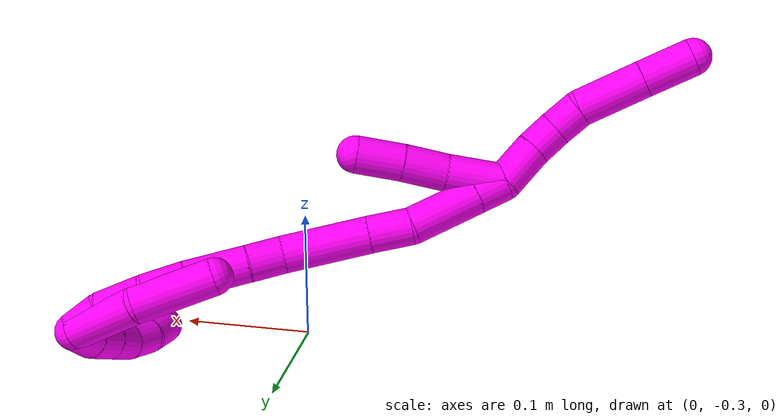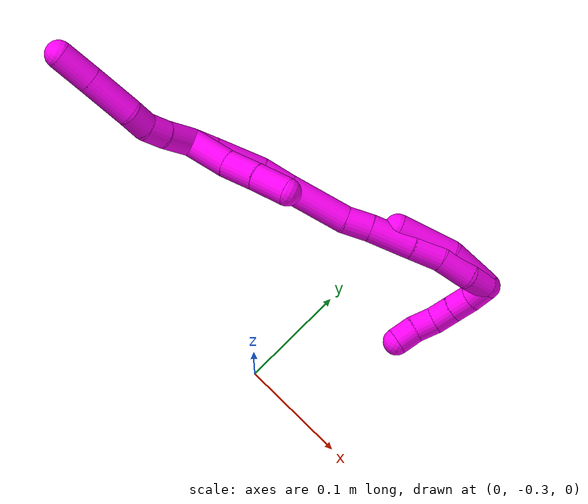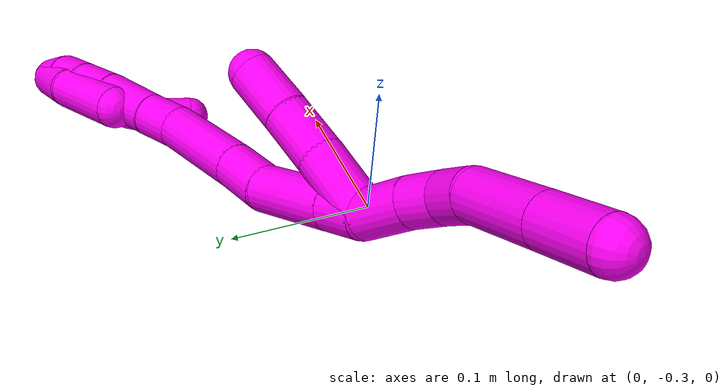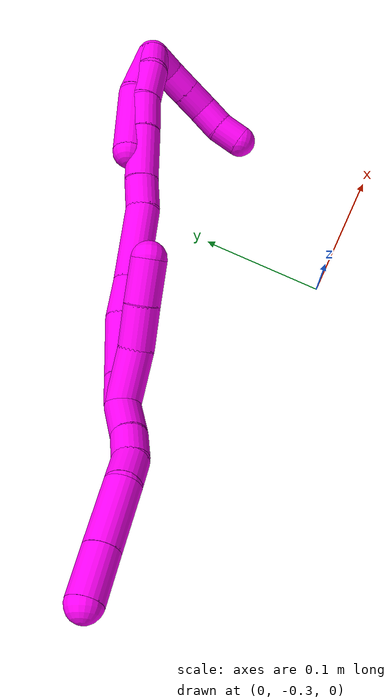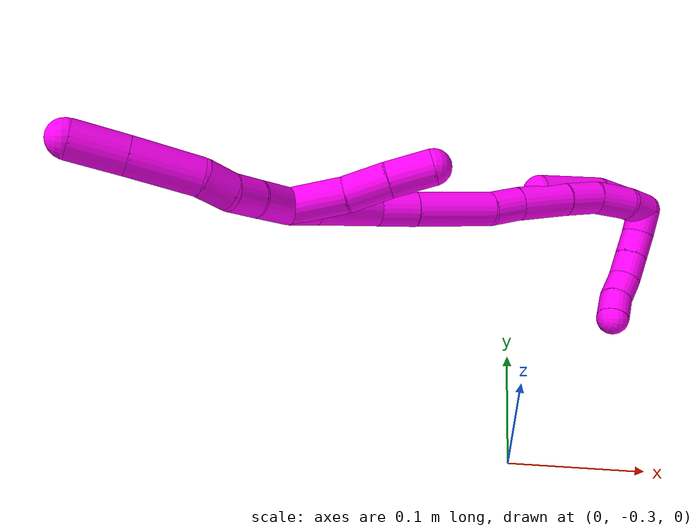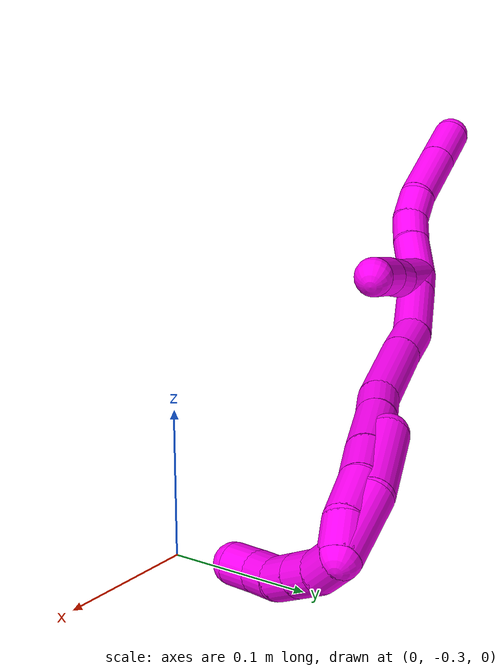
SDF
<sdf version="1.7">
 <world name="default">
  <model name="10">
   <static>0</static>
   <link name="10">
    <collision name="collision-cylinder-e_1_2_8">
     <pose>-0.000705 -0.006794 0.013079 0.479096 -0.047826 -0.011683</pose>
     <geometry><cylinder><radius>0.0125</radius><length>0.029511</length></cylinder></geometry>
     <surface>
      <friction><ode><mu>1.16</mu><mu2>1.16</mu2><slip1>0</slip1><slip2>0</slip2></ode></friction>
      <contact><ode><kp>1e+06</kp><kd>1</kd><max_vel>0</max_vel><min_depth>0.001</min_depth></ode></contact>
     </surface>
    </collision>
    <visual name="visual-cylinder-e_1_2_8">
     <pose>-0.000705 -0.006794 0.013079 0.479096 -0.047826 -0.011683</pose>
     <geometry><cylinder><radius>0.0125</radius><length>0.029511</length></cylinder></geometry>
     <material><ambient>1 0 0.964706 1</ambient></material>
    </visual>
    <collision name="collision-cylinder-e_2_8_9">
     <pose>-0.001274 -0.017353 0.035727 0.374846 0.01328 0.002518</pose>
     <geometry><cylinder><radius>0.0125</radius><length>0.020568</length></cylinder></geometry>
     <surface>
      <friction><ode><mu>1.16</mu><mu2>1.16</mu2><slip1>0</slip1><slip2>0</slip2></ode></friction>
      <contact><ode><kp>1e+06</kp><kd>1</kd><max_vel>0</max_vel><min_depth>0.001</min_depth></ode></contact>
     </surface>
    </collision>
    <visual name="visual-cylinder-e_2_8_9">
     <pose>-0.001274 -0.017353 0.035727 0.374846 0.01328 0.002518</pose>
     <geometry><cylinder><radius>0.0125</radius><length>0.020568</length></cylinder></geometry>
     <material><ambient>1 0 0.964706 1</ambient></material>
    </visual>
    <collision name="collision-cylinder-e_3_9_10">
     <pose>0.00191 -0.024188 0.054867 0.310418 0.294405 0.046392</pose>
     <geometry><cylinder><radius>0.0125</radius><length>0.021006</length></cylinder></geometry>
     <surface>
      <friction><ode><mu>1.16</mu><mu2>1.16</mu2><slip1>0</slip1><slip2>0</slip2></ode></friction>
      <contact><ode><kp>1e+06</kp><kd>1</kd><max_vel>0</max_vel><min_depth>0.001</min_depth></ode></contact>
     </surface>
    </collision>
    <visual name="visual-cylinder-e_3_9_10">
     <pose>0.00191 -0.024188 0.054867 0.310418 0.294405 0.046392</pose>
     <geometry><cylinder><radius>0.0125</radius><length>0.021006</length></cylinder></geometry>
     <material><ambient>1 0 0.964706 1</ambient></material>
    </visual>
    <collision name="collision-cylinder-e_4_10_11">
     <pose>0.010007 -0.028034 0.08633 0.035435 0.226556 0.004032</pose>
     <geometry><cylinder><radius>0.0125</radius><length>0.044961</length></cylinder></geometry>
     <surface>
      <friction><ode><mu>1.16</mu><mu2>1.16</mu2><slip1>0</slip1><slip2>0</slip2></ode></friction>
      <contact><ode><kp>1e+06</kp><kd>1</kd><max_vel>0</max_vel><min_depth>0.001</min_depth></ode></contact>
     </surface>
    </collision>
    <visual name="visual-cylinder-e_4_10_11">
     <pose>0.010007 -0.028034 0.08633 0.035435 0.226556 0.004032</pose>
     <geometry><cylinder><radius>0.0125</radius><length>0.044961</length></cylinder></geometry>
     <material><ambient>1 0 0.964706 1</ambient></material>
    </visual>
    <collision name="collision-cylinder-e_5_11_6">
     <pose>0.018705 -0.029248 0.124797 0.026382 0.216557 0.002868</pose>
     <geometry><cylinder><radius>0.0125</radius><length>0.033955</length></cylinder></geometry>
     <surface>
      <friction><ode><mu>1.16</mu><mu2>1.16</mu2><slip1>0</slip1><slip2>0</slip2></ode></friction>
      <contact><ode><kp>1e+06</kp><kd>1</kd><max_vel>0</max_vel><min_depth>0.001</min_depth></ode></contact>
     </surface>
    </collision>
    <visual name="visual-cylinder-e_5_11_6">
     <pose>0.018705 -0.029248 0.124797 0.026382 0.216557 0.002868</pose>
     <geometry><cylinder><radius>0.0125</radius><length>0.033955</length></cylinder></geometry>
     <material><ambient>1 0 0.964706 1</ambient></material>
    </visual>
    <collision name="collision-cylinder-e_1_2_12">
     <pose>0.001259 -0.009855 -0.016731 2.6093 0.064772 0.23657</pose>
     <geometry><cylinder><radius>0.0125</radius><length>0.038917</length></cylinder></geometry>
     <surface>
      <friction><ode><mu>1.16</mu><mu2>1.16</mu2><slip1>0</slip1><slip2>0</slip2></ode></friction>
      <contact><ode><kp>1e+06</kp><kd>1</kd><max_vel>0</max_vel><min_depth>0.001</min_depth></ode></contact>
     </surface>
    </collision>
    <visual name="visual-cylinder-e_1_2_12">
     <pose>0.001259 -0.009855 -0.016731 2.6093 0.064772 0.23657</pose>
     <geometry><cylinder><radius>0.0125</radius><length>0.038917</length></cylinder></geometry>
     <material><ambient>1 0 0.964706 1</ambient></material>
    </visual>
    <collision name="collision-cylinder-e_2_12_13">
     <pose>0.005295 -0.027635 -0.045798 2.57052 0.187145 0.618835</pose>
     <geometry><cylinder><radius>0.0125</radius><length>0.029845</length></cylinder></geometry>
     <surface>
      <friction><ode><mu>1.16</mu><mu2>1.16</mu2><slip1>0</slip1><slip2>0</slip2></ode></friction>
      <contact><ode><kp>1e+06</kp><kd>1</kd><max_vel>0</max_vel><min_depth>0.001</min_depth></ode></contact>
     </surface>
    </collision>
    <visual name="visual-cylinder-e_2_12_13">
     <pose>0.005295 -0.027635 -0.045798 2.57052 0.187145 0.618835</pose>
     <geometry><cylinder><radius>0.0125</radius><length>0.029845</length></cylinder></geometry>
     <material><ambient>1 0 0.964706 1</ambient></material>
    </visual>
    <collision name="collision-cylinder-e_3_13_5">
     <pose>0.010409 -0.043279 -0.071509 2.61819 0.15021 0.547748</pose>
     <geometry><cylinder><radius>0.0125</radius><length>0.031238</length></cylinder></geometry>
     <surface>
      <friction><ode><mu>1.16</mu><mu2>1.16</mu2><slip1>0</slip1><slip2>0</slip2></ode></friction>
      <contact><ode><kp>1e+06</kp><kd>1</kd><max_vel>0</max_vel><min_depth>0.001</min_depth></ode></contact>
     </surface>
    </collision>
    <visual name="visual-cylinder-e_3_13_5">
     <pose>0.010409 -0.043279 -0.071509 2.61819 0.15021 0.547748</pose>
     <geometry><cylinder><radius>0.0125</radius><length>0.031238</length></cylinder></geometry>
     <material><ambient>1 0 0.964706 1</ambient></material>
    </visual>
    <collision name="collision-cylinder-e_1_2_14">
     <pose>0.0007 0.00082 -0.010242 -3.06169 0.068044 -1.4107</pose>
     <geometry><cylinder><radius>0.0125</radius><length>0.020597</length></cylinder></geometry>
     <surface>
      <friction><ode><mu>1.16</mu><mu2>1.16</mu2><slip1>0</slip1><slip2>0</slip2></ode></friction>
      <contact><ode><kp>1e+06</kp><kd>1</kd><max_vel>0</max_vel><min_depth>0.001</min_depth></ode></contact>
     </surface>
    </collision>
    <visual name="visual-cylinder-e_1_2_14">
     <pose>0.0007 0.00082 -0.010242 -3.06169 0.068044 -1.4107</pose>
     <geometry><cylinder><radius>0.0125</radius><length>0.020597</length></cylinder></geometry>
     <material><ambient>1 0 0.964706 1</ambient></material>
    </visual>
    <collision name="collision-cylinder-e_2_14_15">
     <pose>0.002789 0.003537 -0.04388 -3.06069 0.059079 -1.26119</pose>
     <geometry><cylinder><radius>0.0125</radius><length>0.047028</length></cylinder></geometry>
     <surface>
      <friction><ode><mu>1.16</mu><mu2>1.16</mu2><slip1>0</slip1><slip2>0</slip2></ode></friction>
      <contact><ode><kp>1e+06</kp><kd>1</kd><max_vel>0</max_vel><min_depth>0.001</min_depth></ode></contact>
     </surface>
    </collision>
    <visual name="visual-cylinder-e_2_14_15">
     <pose>0.002789 0.003537 -0.04388 -3.06069 0.059079 -1.26119</pose>
     <geometry><cylinder><radius>0.0125</radius><length>0.047028</length></cylinder></geometry>
     <material><ambient>1 0 0.964706 1</ambient></material>
    </visual>
    <collision name="collision-cylinder-e_3_15_16">
     <pose>0.003742 0.003017 -0.08126 2.97042 -0.030662 -0.35368</pose>
     <geometry><cylinder><radius>0.0125</radius><length>0.028396</length></cylinder></geometry>
     <surface>
      <friction><ode><mu>1.16</mu><mu2>1.16</mu2><slip1>0</slip1><slip2>0</slip2></ode></friction>
      <contact><ode><kp>1e+06</kp><kd>1</kd><max_vel>0</max_vel><min_depth>0.001</min_depth></ode></contact>
     </surface>
    </collision>
    <visual name="visual-cylinder-e_3_15_16">
     <pose>0.003742 0.003017 -0.08126 2.97042 -0.030662 -0.35368</pose>
     <geometry><cylinder><radius>0.0125</radius><length>0.028396</length></cylinder></geometry>
     <material><ambient>1 0 0.964706 1</ambient></material>
    </visual>
    <collision name="collision-cylinder-e_4_16_17">
     <pose>0.003376 -0.003514 -0.124013 2.99957 0.002371 0.033336</pose>
     <geometry><cylinder><radius>0.0125</radius><length>0.058124</length></cylinder></geometry>
     <surface>
      <friction><ode><mu>1.16</mu><mu2>1.16</mu2><slip1>0</slip1><slip2>0</slip2></ode></friction>
      <contact><ode><kp>1e+06</kp><kd>1</kd><max_vel>0</max_vel><min_depth>0.001</min_depth></ode></contact>
     </surface>
    </collision>
    <visual name="visual-cylinder-e_4_16_17">
     <pose>0.003376 -0.003514 -0.124013 2.99957 0.002371 0.033336</pose>
     <geometry><cylinder><radius>0.0125</radius><length>0.058124</length></cylinder></geometry>
     <material><ambient>1 0 0.964706 1</ambient></material>
    </visual>
    <collision name="collision-cylinder-e_5_17_18">
     <pose>0.005656 -0.00872 -0.164331 3.04725 0.188384 2.21477</pose>
     <geometry><cylinder><radius>0.0125</radius><length>0.023618</length></cylinder></geometry>
     <surface>
      <friction><ode><mu>1.16</mu><mu2>1.16</mu2><slip1>0</slip1><slip2>0</slip2></ode></friction>
      <contact><ode><kp>1e+06</kp><kd>1</kd><max_vel>0</max_vel><min_depth>0.001</min_depth></ode></contact>
     </surface>
    </collision>
    <visual name="visual-cylinder-e_5_17_18">
     <pose>0.005656 -0.00872 -0.164331 3.04725 0.188384 2.21477</pose>
     <geometry><cylinder><radius>0.0125</radius><length>0.023618</length></cylinder></geometry>
     <material><ambient>1 0 0.964706 1</ambient></material>
    </visual>
    <collision name="collision-cylinder-e_6_18_19">
     <pose>0.009993 -0.012042 -0.19609 3.03175 0.104164 1.51761</pose>
     <geometry><cylinder><radius>0.0125</radius><length>0.040887</length></cylinder></geometry>
     <surface>
      <friction><ode><mu>1.16</mu><mu2>1.16</mu2><slip1>0</slip1><slip2>0</slip2></ode></friction>
      <contact><ode><kp>1e+06</kp><kd>1</kd><max_vel>0</max_vel><min_depth>0.001</min_depth></ode></contact>
     </surface>
    </collision>
    <visual name="visual-cylinder-e_6_18_19">
     <pose>0.009993 -0.012042 -0.19609 3.03175 0.104164 1.51761</pose>
     <geometry><cylinder><radius>0.0125</radius><length>0.040887</length></cylinder></geometry>
     <material><ambient>1 0 0.964706 1</ambient></material>
    </visual>
    <collision name="collision-cylinder-e_7_19_20">
     <pose>0.013454 -0.014911 -0.230291 3.09587 0.095039 2.24532</pose>
     <geometry><cylinder><radius>0.0125</radius><length>0.028138</length></cylinder></geometry>
     <surface>
      <friction><ode><mu>1.16</mu><mu2>1.16</mu2><slip1>0</slip1><slip2>0</slip2></ode></friction>
      <contact><ode><kp>1e+06</kp><kd>1</kd><max_vel>0</max_vel><min_depth>0.001</min_depth></ode></contact>
     </surface>
    </collision>
    <visual name="visual-cylinder-e_7_19_20">
     <pose>0.013454 -0.014911 -0.230291 3.09587 0.095039 2.24532</pose>
     <geometry><cylinder><radius>0.0125</radius><length>0.028138</length></cylinder></geometry>
     <material><ambient>1 0 0.964706 1</ambient></material>
    </visual>
    <collision name="collision-cylinder-e_8_20_21">
     <pose>0.013196 -0.015514 -0.259654 -3.13919 -0.10329 3.09514</pose>
     <geometry><cylinder><radius>0.0125</radius><length>0.03091</length></cylinder></geometry>
     <surface>
      <friction><ode><mu>1.16</mu><mu2>1.16</mu2><slip1>0</slip1><slip2>0</slip2></ode></friction>
      <contact><ode><kp>1e+06</kp><kd>1</kd><max_vel>0</max_vel><min_depth>0.001</min_depth></ode></contact>
     </surface>
    </collision>
    <visual name="visual-cylinder-e_8_20_21">
     <pose>0.013196 -0.015514 -0.259654 -3.13919 -0.10329 3.09514</pose>
     <geometry><cylinder><radius>0.0125</radius><length>0.03091</length></cylinder></geometry>
     <material><ambient>1 0 0.964706 1</ambient></material>
    </visual>
    <collision name="collision-cylinder-e_9_21_1">
     <pose>0.010582 -0.01249 -0.285722 -2.86926 -0.091563 0.645362</pose>
     <geometry><cylinder><radius>0.0125</radius><length>0.022302</length></cylinder></geometry>
     <surface>
      <friction><ode><mu>1.16</mu><mu2>1.16</mu2><slip1>0</slip1><slip2>0</slip2></ode></friction>
      <contact><ode><kp>1e+06</kp><kd>1</kd><max_vel>0</max_vel><min_depth>0.001</min_depth></ode></contact>
     </surface>
    </collision>
    <visual name="visual-cylinder-e_9_21_1">
     <pose>0.010582 -0.01249 -0.285722 -2.86926 -0.091563 0.645362</pose>
     <geometry><cylinder><radius>0.0125</radius><length>0.022302</length></cylinder></geometry>
     <material><ambient>1 0 0.964706 1</ambient></material>
    </visual>
    <collision name="collision-cylinder-e_1_1_22">
     <pose>0.015222 -0.009715 -0.274399 0.0096 0.251572 0.001214</pose>
     <geometry><cylinder><radius>0.0125</radius><length>0.045468</length></cylinder></geometry>
     <surface>
      <friction><ode><mu>1.16</mu><mu2>1.16</mu2><slip1>0</slip1><slip2>0</slip2></ode></friction>
      <contact><ode><kp>1e+06</kp><kd>1</kd><max_vel>0</max_vel><min_depth>0.001</min_depth></ode></contact>
     </surface>
    </collision>
    <visual name="visual-cylinder-e_1_1_22">
     <pose>0.015222 -0.009715 -0.274399 0.0096 0.251572 0.001214</pose>
     <geometry><cylinder><radius>0.0125</radius><length>0.045468</length></cylinder></geometry>
     <material><ambient>1 0 0.964706 1</ambient></material>
    </visual>
    <collision name="collision-cylinder-e_2_22_4">
     <pose>0.02025 -0.009364 -0.225129 -0.020641 -0.023145 0.000239</pose>
     <geometry><cylinder><radius>0.0125</radius><length>0.054532</length></cylinder></geometry>
     <surface>
      <friction><ode><mu>1.16</mu><mu2>1.16</mu2><slip1>0</slip1><slip2>0</slip2></ode></friction>
      <contact><ode><kp>1e+06</kp><kd>1</kd><max_vel>0</max_vel><min_depth>0.001</min_depth></ode></contact>
     </surface>
    </collision>
    <visual name="visual-cylinder-e_2_22_4">
     <pose>0.02025 -0.009364 -0.225129 -0.020641 -0.023145 0.000239</pose>
     <geometry><cylinder><radius>0.0125</radius><length>0.054532</length></cylinder></geometry>
     <material><ambient>1 0 0.964706 1</ambient></material>
    </visual>
    <collision name="collision-cylinder-e_1_1_23">
     <pose>0.000527 -0.005757 -0.294339 -1.06447 -1.12808 0.713235</pose>
     <geometry><cylinder><radius>0.0125</radius><length>0.02</length></cylinder></geometry>
     <surface>
      <friction><ode><mu>1.16</mu><mu2>1.16</mu2><slip1>0</slip1><slip2>0</slip2></ode></friction>
      <contact><ode><kp>1e+06</kp><kd>1</kd><max_vel>0</max_vel><min_depth>0.001</min_depth></ode></contact>
     </surface>
    </collision>
    <visual name="visual-cylinder-e_1_1_23">
     <pose>0.000527 -0.005757 -0.294339 -1.06447 -1.12808 0.713235</pose>
     <geometry><cylinder><radius>0.0125</radius><length>0.02</length></cylinder></geometry>
     <material><ambient>1 0 0.964706 1</ambient></material>
    </visual>
    <collision name="collision-cylinder-e_2_23_24">
     <pose>-0.017523 -0.000154 -0.288349 -0.442961 -1.12288 0.281377</pose>
     <geometry><cylinder><radius>0.0125</radius><length>0.02</length></cylinder></geometry>
     <surface>
      <friction><ode><mu>1.16</mu><mu2>1.16</mu2><slip1>0</slip1><slip2>0</slip2></ode></friction>
      <contact><ode><kp>1e+06</kp><kd>1</kd><max_vel>0</max_vel><min_depth>0.001</min_depth></ode></contact>
     </surface>
    </collision>
    <visual name="visual-cylinder-e_2_23_24">
     <pose>-0.017523 -0.000154 -0.288349 -0.442961 -1.12288 0.281377</pose>
     <geometry><cylinder><radius>0.0125</radius><length>0.02</length></cylinder></geometry>
     <material><ambient>1 0 0.964706 1</ambient></material>
    </visual>
    <collision name="collision-cylinder-e_3_24_25">
     <pose>-0.035569 0.003516 -0.280548 -0.436504 -1.12736 0.278561</pose>
     <geometry><cylinder><radius>0.0125</radius><length>0.02</length></cylinder></geometry>
     <surface>
      <friction><ode><mu>1.16</mu><mu2>1.16</mu2><slip1>0</slip1><slip2>0</slip2></ode></friction>
      <contact><ode><kp>1e+06</kp><kd>1</kd><max_vel>0</max_vel><min_depth>0.001</min_depth></ode></contact>
     </surface>
    </collision>
    <visual name="visual-cylinder-e_3_24_25">
     <pose>-0.035569 0.003516 -0.280548 -0.436504 -1.12736 0.278561</pose>
     <geometry><cylinder><radius>0.0125</radius><length>0.02</length></cylinder></geometry>
     <material><ambient>1 0 0.964706 1</ambient></material>
    </visual>
    <collision name="collision-cylinder-e_4_25_26">
     <pose>-0.05265 0.00521 -0.270726 0.020233 -0.935469 -0.01022</pose>
     <geometry><cylinder><radius>0.0125</radius><length>0.02</length></cylinder></geometry>
     <surface>
      <friction><ode><mu>1.16</mu><mu2>1.16</mu2><slip1>0</slip1><slip2>0</slip2></ode></friction>
      <contact><ode><kp>1e+06</kp><kd>1</kd><max_vel>0</max_vel><min_depth>0.001</min_depth></ode></contact>
     </surface>
    </collision>
    <visual name="visual-cylinder-e_4_25_26">
     <pose>-0.05265 0.00521 -0.270726 0.020233 -0.935469 -0.01022</pose>
     <geometry><cylinder><radius>0.0125</radius><length>0.02</length></cylinder></geometry>
     <material><ambient>1 0 0.964706 1</ambient></material>
    </visual>
    <collision name="collision-cylinder-e_5_26_3">
     <pose>-0.069257 0.003146 -0.259999 0.385186 -1.02713 -0.219109</pose>
     <geometry><cylinder><radius>0.0125</radius><length>0.02</length></cylinder></geometry>
     <surface>
      <friction><ode><mu>1.16</mu><mu2>1.16</mu2><slip1>0</slip1><slip2>0</slip2></ode></friction>
      <contact><ode><kp>1e+06</kp><kd>1</kd><max_vel>0</max_vel><min_depth>0.001</min_depth></ode></contact>
     </surface>
    </collision>
    <visual name="visual-cylinder-e_5_26_3">
     <pose>-0.069257 0.003146 -0.259999 0.385186 -1.02713 -0.219109</pose>
     <geometry><cylinder><radius>0.0125</radius><length>0.02</length></cylinder></geometry>
     <material><ambient>1 0 0.964706 1</ambient></material>
    </visual>
    <collision name="collision-sphere-3">
     <pose>-0.077816 0.001202 -0.255206 0 -0 0</pose>
     <geometry><sphere><radius>0.0125</radius></sphere></geometry>
     <surface>
      <friction><ode><mu>1.16</mu><mu2>1.16</mu2><slip1>0</slip1><slip2>0</slip2></ode></friction>
      <contact><ode><kp>1e+06</kp><kd>1</kd><max_vel>0</max_vel><min_depth>0.001</min_depth></ode></contact>
     </surface>
    </collision>
    <visual name="visual-sphere-3">
     <pose>-0.077816 0.001202 -0.255206 0 -0 0</pose>
     <geometry><sphere><radius>0.0125</radius></sphere></geometry>
     <material><ambient>1 0 0.964706 1</ambient></material>
    </visual>
    <collision name="collision-sphere-26">
     <pose>-0.060699 0.00509 -0.264793 0 -0 0</pose>
     <geometry><sphere><radius>0.0125</radius></sphere></geometry>
     <surface>
      <friction><ode><mu>1.16</mu><mu2>1.16</mu2><slip1>0</slip1><slip2>0</slip2></ode></friction>
      <contact><ode><kp>1e+06</kp><kd>1</kd><max_vel>0</max_vel><min_depth>0.001</min_depth></ode></contact>
     </surface>
    </collision>
    <visual name="visual-sphere-26">
     <pose>-0.060699 0.00509 -0.264793 0 -0 0</pose>
     <geometry><sphere><radius>0.0125</radius></sphere></geometry>
     <material><ambient>1 0 0.964706 1</ambient></material>
    </visual>
    <collision name="collision-sphere-25">
     <pose>-0.044602 0.00533 -0.27666 0 -0 0</pose>
     <geometry><sphere><radius>0.0125</radius></sphere></geometry>
     <surface>
      <friction><ode><mu>1.16</mu><mu2>1.16</mu2><slip1>0</slip1><slip2>0</slip2></ode></friction>
      <contact><ode><kp>1e+06</kp><kd>1</kd><max_vel>0</max_vel><min_depth>0.001</min_depth></ode></contact>
     </surface>
    </collision>
    <visual name="visual-sphere-25">
     <pose>-0.044602 0.00533 -0.27666 0 -0 0</pose>
     <geometry><sphere><radius>0.0125</radius></sphere></geometry>
     <material><ambient>1 0 0.964706 1</ambient></material>
    </visual>
    <collision name="collision-sphere-24">
     <pose>-0.026536 0.001702 -0.284436 0 -0 0</pose>
     <geometry><sphere><radius>0.0125</radius></sphere></geometry>
     <surface>
      <friction><ode><mu>1.16</mu><mu2>1.16</mu2><slip1>0</slip1><slip2>0</slip2></ode></friction>
      <contact><ode><kp>1e+06</kp><kd>1</kd><max_vel>0</max_vel><min_depth>0.001</min_depth></ode></contact>
     </surface>
    </collision>
    <visual name="visual-sphere-24">
     <pose>-0.026536 0.001702 -0.284436 0 -0 0</pose>
     <geometry><sphere><radius>0.0125</radius></sphere></geometry>
     <material><ambient>1 0 0.964706 1</ambient></material>
    </visual>
    <collision name="collision-sphere-23">
     <pose>-0.008509 -0.002011 -0.292262 0 -0 0</pose>
     <geometry><sphere><radius>0.0125</radius></sphere></geometry>
     <surface>
      <friction><ode><mu>1.16</mu><mu2>1.16</mu2><slip1>0</slip1><slip2>0</slip2></ode></friction>
      <contact><ode><kp>1e+06</kp><kd>1</kd><max_vel>0</max_vel><min_depth>0.001</min_depth></ode></contact>
     </surface>
    </collision>
    <visual name="visual-sphere-23">
     <pose>-0.008509 -0.002011 -0.292262 0 -0 0</pose>
     <geometry><sphere><radius>0.0125</radius></sphere></geometry>
     <material><ambient>1 0 0.964706 1</ambient></material>
    </visual>
    <collision name="collision-sphere-4">
     <pose>0.019619 -0.008801 -0.197876 0 -0 0</pose>
     <geometry><sphere><radius>0.0125</radius></sphere></geometry>
     <surface>
      <friction><ode><mu>1.16</mu><mu2>1.16</mu2><slip1>0</slip1><slip2>0</slip2></ode></friction>
      <contact><ode><kp>1e+06</kp><kd>1</kd><max_vel>0</max_vel><min_depth>0.001</min_depth></ode></contact>
     </surface>
    </collision>
    <visual name="visual-sphere-4">
     <pose>0.019619 -0.008801 -0.197876 0 -0 0</pose>
     <geometry><sphere><radius>0.0125</radius></sphere></geometry>
     <material><ambient>1 0 0.964706 1</ambient></material>
    </visual>
    <collision name="collision-sphere-22">
     <pose>0.020881 -0.009926 -0.252382 0 -0 0</pose>
     <geometry><sphere><radius>0.0125</radius></sphere></geometry>
     <surface>
      <friction><ode><mu>1.16</mu><mu2>1.16</mu2><slip1>0</slip1><slip2>0</slip2></ode></friction>
      <contact><ode><kp>1e+06</kp><kd>1</kd><max_vel>0</max_vel><min_depth>0.001</min_depth></ode></contact>
     </surface>
    </collision>
    <visual name="visual-sphere-22">
     <pose>0.020881 -0.009926 -0.252382 0 -0 0</pose>
     <geometry><sphere><radius>0.0125</radius></sphere></geometry>
     <material><ambient>1 0 0.964706 1</ambient></material>
    </visual>
    <collision name="collision-sphere-1">
     <pose>0.009563 -0.009504 -0.296417 0 -0 0</pose>
     <geometry><sphere><radius>0.0125</radius></sphere></geometry>
     <surface>
      <friction><ode><mu>1.16</mu><mu2>1.16</mu2><slip1>0</slip1><slip2>0</slip2></ode></friction>
      <contact><ode><kp>1e+06</kp><kd>1</kd><max_vel>0</max_vel><min_depth>0.001</min_depth></ode></contact>
     </surface>
    </collision>
    <visual name="visual-sphere-1">
     <pose>0.009563 -0.009504 -0.296417 0 -0 0</pose>
     <geometry><sphere><radius>0.0125</radius></sphere></geometry>
     <material><ambient>1 0 0.964706 1</ambient></material>
    </visual>
    <collision name="collision-sphere-21">
     <pose>0.011602 -0.015477 -0.275026 0 -0 0</pose>
     <geometry><sphere><radius>0.0125</radius></sphere></geometry>
     <surface>
      <friction><ode><mu>1.16</mu><mu2>1.16</mu2><slip1>0</slip1><slip2>0</slip2></ode></friction>
      <contact><ode><kp>1e+06</kp><kd>1</kd><max_vel>0</max_vel><min_depth>0.001</min_depth></ode></contact>
     </surface>
    </collision>
    <visual name="visual-sphere-21">
     <pose>0.011602 -0.015477 -0.275026 0 -0 0</pose>
     <geometry><sphere><radius>0.0125</radius></sphere></geometry>
     <material><ambient>1 0 0.964706 1</ambient></material>
    </visual>
    <collision name="collision-sphere-6">
     <pose>0.022353 -0.029685 0.141372 0 -0 0</pose>
     <geometry><sphere><radius>0.0125</radius></sphere></geometry>
     <surface>
      <friction><ode><mu>1.16</mu><mu2>1.16</mu2><slip1>0</slip1><slip2>0</slip2></ode></friction>
      <contact><ode><kp>1e+06</kp><kd>1</kd><max_vel>0</max_vel><min_depth>0.001</min_depth></ode></contact>
     </surface>
    </collision>
    <visual name="visual-sphere-6">
     <pose>0.022353 -0.029685 0.141372 0 -0 0</pose>
     <geometry><sphere><radius>0.0125</radius></sphere></geometry>
     <material><ambient>1 0 0.964706 1</ambient></material>
    </visual>
    <collision name="collision-sphere-11">
     <pose>0.015057 -0.02881 0.108222 0 -0 0</pose>
     <geometry><sphere><radius>0.0125</radius></sphere></geometry>
     <surface>
      <friction><ode><mu>1.16</mu><mu2>1.16</mu2><slip1>0</slip1><slip2>0</slip2></ode></friction>
      <contact><ode><kp>1e+06</kp><kd>1</kd><max_vel>0</max_vel><min_depth>0.001</min_depth></ode></contact>
     </surface>
    </collision>
    <visual name="visual-sphere-11">
     <pose>0.015057 -0.02881 0.108222 0 -0 0</pose>
     <geometry><sphere><radius>0.0125</radius></sphere></geometry>
     <material><ambient>1 0 0.964706 1</ambient></material>
    </visual>
    <collision name="collision-sphere-10">
     <pose>0.004958 -0.027258 0.064438 0 -0 0</pose>
     <geometry><sphere><radius>0.0125</radius></sphere></geometry>
     <surface>
      <friction><ode><mu>1.16</mu><mu2>1.16</mu2><slip1>0</slip1><slip2>0</slip2></ode></friction>
      <contact><ode><kp>1e+06</kp><kd>1</kd><max_vel>0</max_vel><min_depth>0.001</min_depth></ode></contact>
     </surface>
    </collision>
    <visual name="visual-sphere-10">
     <pose>0.004958 -0.027258 0.064438 0 -0 0</pose>
     <geometry><sphere><radius>0.0125</radius></sphere></geometry>
     <material><ambient>1 0 0.964706 1</ambient></material>
    </visual>
    <collision name="collision-sphere-9">
     <pose>-0.001138 -0.021118 0.045296 0 -0 0</pose>
     <geometry><sphere><radius>0.0125</radius></sphere></geometry>
     <surface>
      <friction><ode><mu>1.16</mu><mu2>1.16</mu2><slip1>0</slip1><slip2>0</slip2></ode></friction>
      <contact><ode><kp>1e+06</kp><kd>1</kd><max_vel>0</max_vel><min_depth>0.001</min_depth></ode></contact>
     </surface>
    </collision>
    <visual name="visual-sphere-9">
     <pose>-0.001138 -0.021118 0.045296 0 -0 0</pose>
     <geometry><sphere><radius>0.0125</radius></sphere></geometry>
     <material><ambient>1 0 0.964706 1</ambient></material>
    </visual>
    <collision name="collision-sphere-2">
     <geometry><sphere><radius>0.0125</radius></sphere></geometry>
     <surface>
      <friction><ode><mu>1.16</mu><mu2>1.16</mu2><slip1>0</slip1><slip2>0</slip2></ode></friction>
      <contact><ode><kp>1e+06</kp><kd>1</kd><max_vel>0</max_vel><min_depth>0.001</min_depth></ode></contact>
     </surface>
    </collision>
    <visual name="visual-sphere-2">
     <geometry><sphere><radius>0.0125</radius></sphere></geometry>
     <material><ambient>1 0 0.964706 1</ambient></material>
    </visual>
    <collision name="collision-sphere-19">
     <pose>0.012119 -0.014271 -0.2163 0 -0 0</pose>
     <geometry><sphere><radius>0.0125</radius></sphere></geometry>
     <surface>
      <friction><ode><mu>1.16</mu><mu2>1.16</mu2><slip1>0</slip1><slip2>0</slip2></ode></friction>
      <contact><ode><kp>1e+06</kp><kd>1</kd><max_vel>0</max_vel><min_depth>0.001</min_depth></ode></contact>
     </surface>
    </collision>
    <visual name="visual-sphere-19">
     <pose>0.012119 -0.014271 -0.2163 0 -0 0</pose>
     <geometry><sphere><radius>0.0125</radius></sphere></geometry>
     <material><ambient>1 0 0.964706 1</ambient></material>
    </visual>
    <collision name="collision-sphere-8">
     <pose>-0.001411 -0.013588 0.026158 0 -0 0</pose>
     <geometry><sphere><radius>0.0125</radius></sphere></geometry>
     <surface>
      <friction><ode><mu>1.16</mu><mu2>1.16</mu2><slip1>0</slip1><slip2>0</slip2></ode></friction>
      <contact><ode><kp>1e+06</kp><kd>1</kd><max_vel>0</max_vel><min_depth>0.001</min_depth></ode></contact>
     </surface>
    </collision>
    <visual name="visual-sphere-8">
     <pose>-0.001411 -0.013588 0.026158 0 -0 0</pose>
     <geometry><sphere><radius>0.0125</radius></sphere></geometry>
     <material><ambient>1 0 0.964706 1</ambient></material>
    </visual>
    <collision name="collision-sphere-12">
     <pose>0.002519 -0.019709 -0.033462 0 -0 0</pose>
     <geometry><sphere><radius>0.0125</radius></sphere></geometry>
     <surface>
      <friction><ode><mu>1.16</mu><mu2>1.16</mu2><slip1>0</slip1><slip2>0</slip2></ode></friction>
      <contact><ode><kp>1e+06</kp><kd>1</kd><max_vel>0</max_vel><min_depth>0.001</min_depth></ode></contact>
     </surface>
    </collision>
    <visual name="visual-sphere-12">
     <pose>0.002519 -0.019709 -0.033462 0 -0 0</pose>
     <geometry><sphere><radius>0.0125</radius></sphere></geometry>
     <material><ambient>1 0 0.964706 1</ambient></material>
    </visual>
    <collision name="collision-sphere-13">
     <pose>0.008072 -0.03556 -0.058133 0 -0 0</pose>
     <geometry><sphere><radius>0.0125</radius></sphere></geometry>
     <surface>
      <friction><ode><mu>1.16</mu><mu2>1.16</mu2><slip1>0</slip1><slip2>0</slip2></ode></friction>
      <contact><ode><kp>1e+06</kp><kd>1</kd><max_vel>0</max_vel><min_depth>0.001</min_depth></ode></contact>
     </surface>
    </collision>
    <visual name="visual-sphere-13">
     <pose>0.008072 -0.03556 -0.058133 0 -0 0</pose>
     <geometry><sphere><radius>0.0125</radius></sphere></geometry>
     <material><ambient>1 0 0.964706 1</ambient></material>
    </visual>
    <collision name="collision-sphere-5">
     <pose>0.012746 -0.050998 -0.084884 0 -0 0</pose>
     <geometry><sphere><radius>0.0125</radius></sphere></geometry>
     <surface>
      <friction><ode><mu>1.16</mu><mu2>1.16</mu2><slip1>0</slip1><slip2>0</slip2></ode></friction>
      <contact><ode><kp>1e+06</kp><kd>1</kd><max_vel>0</max_vel><min_depth>0.001</min_depth></ode></contact>
     </surface>
    </collision>
    <visual name="visual-sphere-5">
     <pose>0.012746 -0.050998 -0.084884 0 -0 0</pose>
     <geometry><sphere><radius>0.0125</radius></sphere></geometry>
     <material><ambient>1 0 0.964706 1</ambient></material>
    </visual>
    <collision name="collision-sphere-14">
     <pose>0.0014 0.00164 -0.020484 0 -0 0</pose>
     <geometry><sphere><radius>0.0125</radius></sphere></geometry>
     <surface>
      <friction><ode><mu>1.16</mu><mu2>1.16</mu2><slip1>0</slip1><slip2>0</slip2></ode></friction>
      <contact><ode><kp>1e+06</kp><kd>1</kd><max_vel>0</max_vel><min_depth>0.001</min_depth></ode></contact>
     </surface>
    </collision>
    <visual name="visual-sphere-14">
     <pose>0.0014 0.00164 -0.020484 0 -0 0</pose>
     <geometry><sphere><radius>0.0125</radius></sphere></geometry>
     <material><ambient>1 0 0.964706 1</ambient></material>
    </visual>
    <collision name="collision-sphere-15">
     <pose>0.004177 0.005434 -0.067276 0 -0 0</pose>
     <geometry><sphere><radius>0.0125</radius></sphere></geometry>
     <surface>
      <friction><ode><mu>1.16</mu><mu2>1.16</mu2><slip1>0</slip1><slip2>0</slip2></ode></friction>
      <contact><ode><kp>1e+06</kp><kd>1</kd><max_vel>0</max_vel><min_depth>0.001</min_depth></ode></contact>
     </surface>
    </collision>
    <visual name="visual-sphere-15">
     <pose>0.004177 0.005434 -0.067276 0 -0 0</pose>
     <geometry><sphere><radius>0.0125</radius></sphere></geometry>
     <material><ambient>1 0 0.964706 1</ambient></material>
    </visual>
    <collision name="collision-sphere-16">
     <pose>0.003307 0.0006 -0.095244 0 -0 0</pose>
     <geometry><sphere><radius>0.0125</radius></sphere></geometry>
     <surface>
      <friction><ode><mu>1.16</mu><mu2>1.16</mu2><slip1>0</slip1><slip2>0</slip2></ode></friction>
      <contact><ode><kp>1e+06</kp><kd>1</kd><max_vel>0</max_vel><min_depth>0.001</min_depth></ode></contact>
     </surface>
    </collision>
    <visual name="visual-sphere-16">
     <pose>0.003307 0.0006 -0.095244 0 -0 0</pose>
     <geometry><sphere><radius>0.0125</radius></sphere></geometry>
     <material><ambient>1 0 0.964706 1</ambient></material>
    </visual>
    <collision name="collision-sphere-17">
     <pose>0.003445 -0.007627 -0.152782 0 -0 0</pose>
     <geometry><sphere><radius>0.0125</radius></sphere></geometry>
     <surface>
      <friction><ode><mu>1.16</mu><mu2>1.16</mu2><slip1>0</slip1><slip2>0</slip2></ode></friction>
      <contact><ode><kp>1e+06</kp><kd>1</kd><max_vel>0</max_vel><min_depth>0.001</min_depth></ode></contact>
     </surface>
    </collision>
    <visual name="visual-sphere-17">
     <pose>0.003445 -0.007627 -0.152782 0 -0 0</pose>
     <geometry><sphere><radius>0.0125</radius></sphere></geometry>
     <material><ambient>1 0 0.964706 1</ambient></material>
    </visual>
    <collision name="collision-sphere-18">
     <pose>0.007868 -0.009813 -0.17588 0 -0 0</pose>
     <geometry><sphere><radius>0.0125</radius></sphere></geometry>
     <surface>
      <friction><ode><mu>1.16</mu><mu2>1.16</mu2><slip1>0</slip1><slip2>0</slip2></ode></friction>
      <contact><ode><kp>1e+06</kp><kd>1</kd><max_vel>0</max_vel><min_depth>0.001</min_depth></ode></contact>
     </surface>
    </collision>
    <visual name="visual-sphere-18">
     <pose>0.007868 -0.009813 -0.17588 0 -0 0</pose>
     <geometry><sphere><radius>0.0125</radius></sphere></geometry>
     <material><ambient>1 0 0.964706 1</ambient></material>
    </visual>
    <collision name="collision-sphere-20">
     <pose>0.014789 -0.015551 -0.244282 0 -0 0</pose>
     <geometry><sphere><radius>0.0125</radius></sphere></geometry>
     <surface>
      <friction><ode><mu>1.16</mu><mu2>1.16</mu2><slip1>0</slip1><slip2>0</slip2></ode></friction>
      <contact><ode><kp>1e+06</kp><kd>1</kd><max_vel>0</max_vel><min_depth>0.001</min_depth></ode></contact>
     </surface>
    </collision>
    <visual name="visual-sphere-20">
     <pose>0.014789 -0.015551 -0.244282 0 -0 0</pose>
     <geometry><sphere><radius>0.0125</radius></sphere></geometry>
     <material><ambient>1 0 0.964706 1</ambient></material>
    </visual>
    <inertial>
     <pose>0.002573 -0.011365 -0.121412 0 -0 0</pose>
     <mass>0.75</mass>
     <inertia><ixx>8.4e-05</ixx><ixy>0</ixy><ixz>0</ixz><iyy>2.3e-05</iyy><iyz>0</iyz><izz>2e-06</izz></inertia>
    </inertial>
   </link>
   <pose>-0.16041 -0.215109 0.168792 -1.19616 -0.471817 1.76703</pose>
  </model>
 </world>
</sdf>
